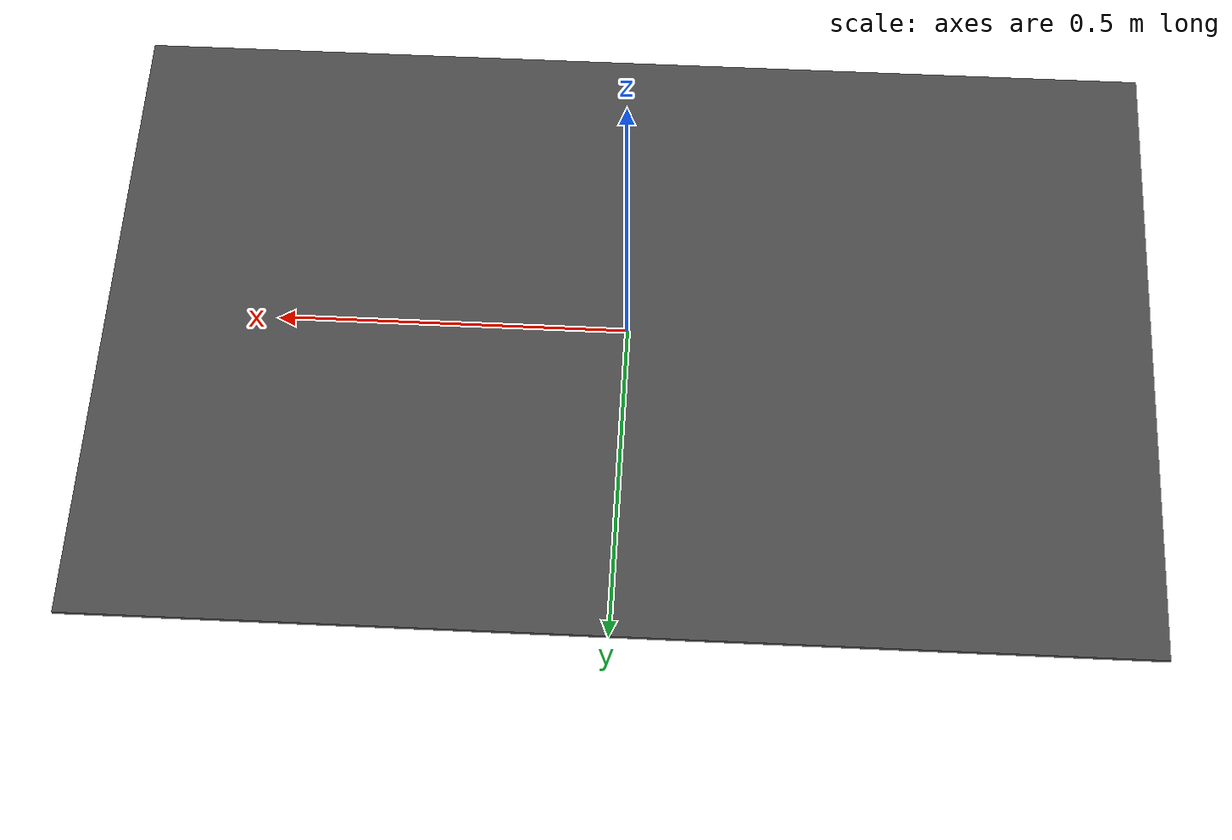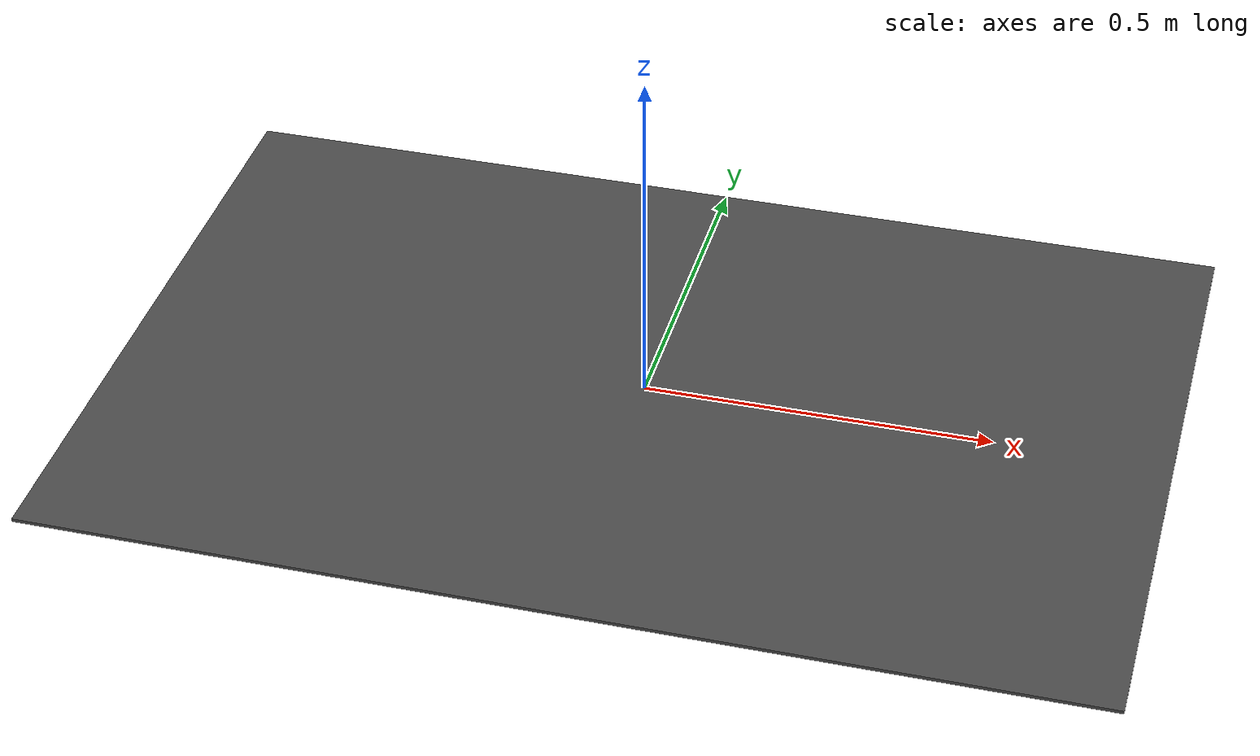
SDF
<?xml version="1.0" ?>
<sdf version="1.4">
  <model name="road_plane_3_double">
    <static>true</static>
    <link name="link">
      <collision name="collision">
        <geometry>
          <box>
            <size>1.5 1.0 0.005</size>
          </box>
        </geometry>
      </collision>
      <visual name="visual">
        <cast_shadows>false</cast_shadows>
        <geometry>
          <box>
            <size>1.5 1.0 0.005</size>
          </box>
        </geometry>
        <material>
          <script>
            <uri>model://road_plane_3_double/materials/scripts</uri>
            <uri>model://road_plane_3_double/materials/textures</uri>
            <name>vrc/road3_double</name>
          </script>
        </material>
      </visual>
    </link>
  </model>
</sdf>
